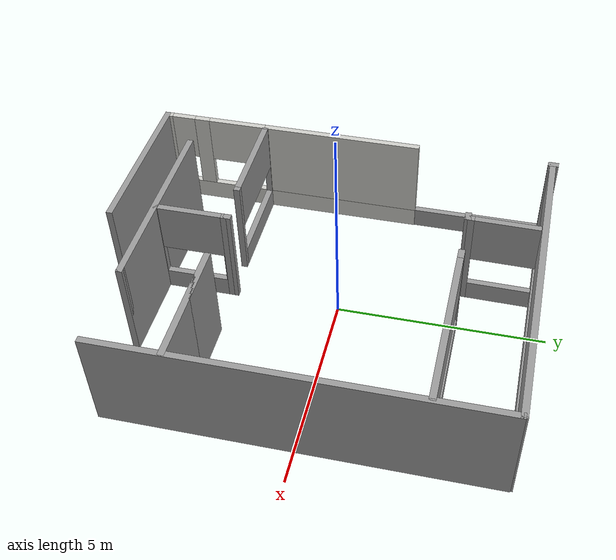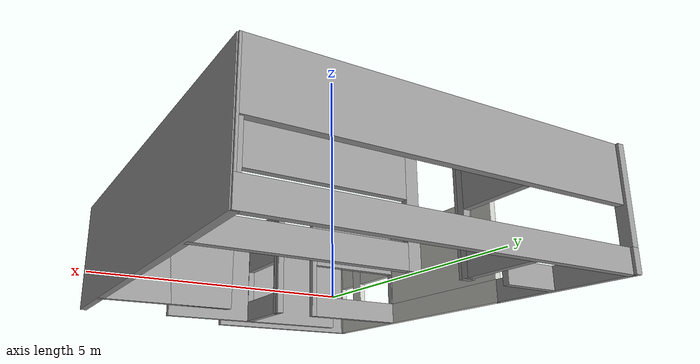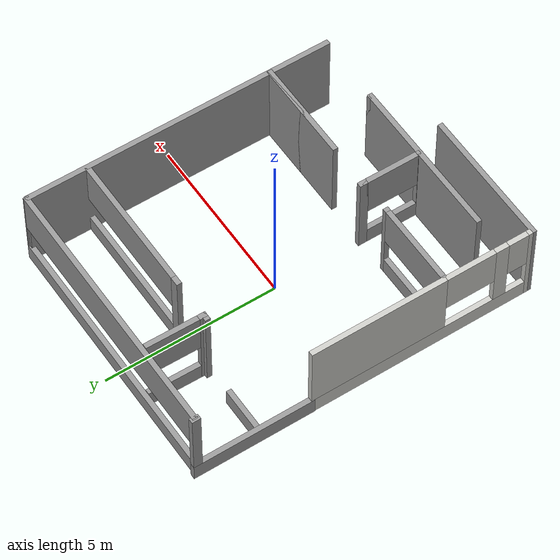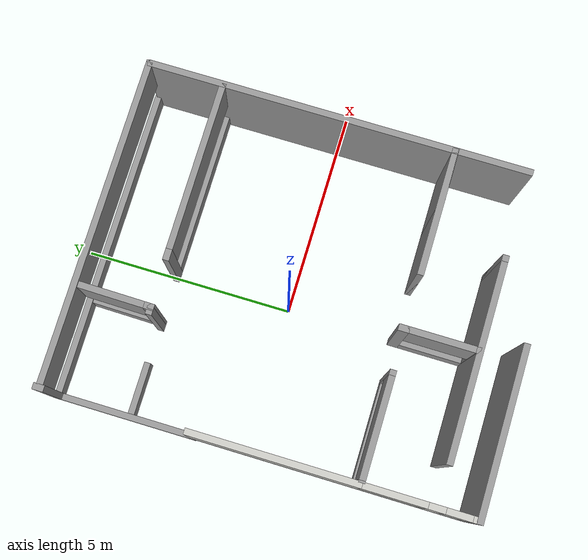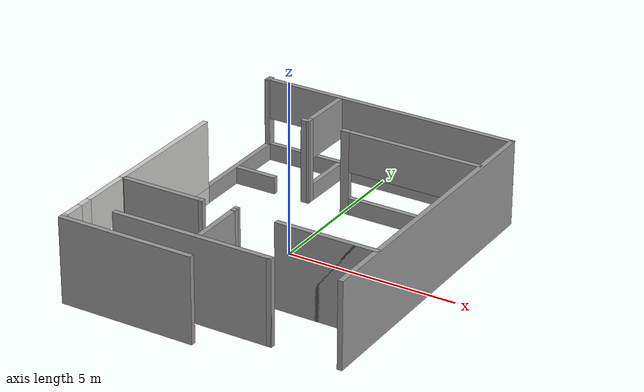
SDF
<?xml version='1.0'?>
<sdf version='1.6'>
  <model name='Office_room_without_door'>
    <pose frame=''>0.336715 -0.311362 0 0 -0 0</pose>
    <link name='Wall_1'>
      <collision name='Wall_1_Collision'>
        <geometry>
          <box>
            <size>4.75 0.15 2.5</size>
          </box>
        </geometry>
        <pose frame=''>0 0 1.25 0 -0 0</pose>
      </collision>
      <visual name='Wall_1_Visual'>
        <pose frame=''>0 0 1.25 0 -0 0</pose>
        <geometry>
          <box>
            <size>4.75 0.15 2.5</size>
          </box>
        </geometry>
        <material>
          <script>
            <uri>file://media/materials/scripts/gazebo.material</uri>
            <name>Gazebo/Grey</name>
          </script>
          <ambient>1 1 1 1</ambient>
        </material>
        <meta>
          <layer>0</layer>
        </meta>
      </visual>
      <pose frame=''>-0.516715 -3.99864 0 0 -0 0</pose>
    </link>
    <link name='Wall_14'>
      <collision name='Wall_14_Collision'>
        <geometry>
          <box>
            <size>3 0.15 2.5</size>
          </box>
        </geometry>
        <pose frame=''>0 0 1.25 0 -0 0</pose>
      </collision>
      <visual name='Wall_14_Visual'>
        <pose frame=''>0 0 1.25 0 -0 0</pose>
        <geometry>
          <box>
            <size>3 0.15 2.5</size>
          </box>
        </geometry>
        <material>
          <script>
            <uri>file://media/materials/scripts/gazebo.material</uri>
            <name>Gazebo/Grey</name>
          </script>
          <ambient>1 1 1 1</ambient>
        </material>
        <meta>
          <layer>0</layer>
        </meta>
      </visual>
      <pose frame=''>2.39026 -2.31103 0 0 -0 3.14159</pose>
    </link>
    <link name='Wall_15'>
      <collision name='Wall_15_Collision'>
        <geometry>
          <box>
            <size>3 0.15 2.5</size>
          </box>
        </geometry>
        <pose frame=''>0 0 1.25 0 -0 0</pose>
      </collision>
      <visual name='Wall_15_Visual'>
        <pose frame=''>0 0 1.25 0 -0 0</pose>
        <geometry>
          <box>
            <size>3 0.15 2.5</size>
          </box>
        </geometry>
        <material>
          <script>
            <uri>file://media/materials/scripts/gazebo.material</uri>
            <name>Gazebo/Grey</name>
          </script>
          <ambient>1 1 1 1</ambient>
        </material>
        <meta>
          <layer>0</layer>
        </meta>
      </visual>
      <pose frame=''>2.39026 -2.31103 0 0 -0 0</pose>
    </link>
    <link name='Wall_19'>
      <collision name='Wall_19_Collision'>
        <geometry>
          <box>
            <size>0.25 0.15 2.5</size>
          </box>
        </geometry>
        <pose frame=''>0 0 1.25 0 -0 0</pose>
      </collision>
      <visual name='Wall_19_Visual'>
        <pose frame=''>0 0 1.25 0 -0 0</pose>
        <geometry>
          <box>
            <size>0.25 0.15 2.5</size>
          </box>
        </geometry>
        <material>
          <script>
            <uri>file://media/materials/scripts/gazebo.material</uri>
            <name>Gazebo/Grey</name>
          </script>
          <ambient>1 1 1 1</ambient>
        </material>
        <meta>
          <layer>0</layer>
        </meta>
      </visual>
      <pose frame=''>-0.346715 -2.28864 0 0 -0 1.5708</pose>
    </link>
    <link name='Wall_2'>
      <collision name='Wall_2_Collision'>
        <geometry>
          <box>
            <size>0.15 0.15 2.5</size>
          </box>
        </geometry>
        <pose frame=''>0 0 1.25 0 -0 0</pose>
      </collision>
      <visual name='Wall_2_Visual'>
        <pose frame=''>0 0 1.25 0 -0 0</pose>
        <geometry>
          <box>
            <size>0.15 0.15 2.5</size>
          </box>
        </geometry>
        <material>
          <script>
            <uri>file://media/materials/scripts/gazebo.material</uri>
            <name>Gazebo/Grey</name>
          </script>
          <ambient>1 1 1 1</ambient>
        </material>
        <meta>
          <layer>0</layer>
        </meta>
      </visual>
      <pose frame=''>1.78329 -3.99864 0 0 -0 0</pose>
    </link>
    <link name='Wall_29'>
      <collision name='Wall_29_Collision'>
        <geometry>
          <box>
            <size>9 0.15 2.5</size>
          </box>
        </geometry>
        <pose frame=''>0 0 1.25 0 -0 0</pose>
      </collision>
      <visual name='Wall_29_Visual'>
        <pose frame=''>0 0 1.25 0 -0 0</pose>
        <geometry>
          <box>
            <size>9 0.15 2.5</size>
          </box>
        </geometry>
        <material>
          <script>
            <uri>file://media/materials/scripts/gazebo.material</uri>
            <name>Gazebo/Grey</name>
          </script>
          <ambient>1 1 1 1</ambient>
        </material>
        <meta>
          <layer>0</layer>
        </meta>
      </visual>
      <pose frame=''>3.83671 0.402172 0 0 0 -1.5708</pose>
    </link>
    <link name='Wall_31'>
      <collision name='Wall_31_Collision'>
        <geometry>
          <box>
            <size>0.25 0.15 2.5</size>
          </box>
        </geometry>
        <pose frame=''>0 0 1.25 0 -0 0</pose>
      </collision>
      <visual name='Wall_31_Visual'>
        <pose frame=''>0 0 1.25 0 -0 0</pose>
        <geometry>
          <box>
            <size>0.25 0.15 2.5</size>
          </box>
        </geometry>
        <material>
          <script>
            <uri>file://media/materials/scripts/gazebo.material</uri>
            <name>Gazebo/Grey</name>
          </script>
          <ambient>1 1 1 1</ambient>
        </material>
        <meta>
          <layer>0</layer>
        </meta>
      </visual>
      <pose frame=''>-1.53122 3.11017 0 0 -0 3.14159</pose>
    </link>
    <link name='Wall_35'>
      <pose frame=''>0.017406 4.87007 0 0 -0 0</pose>
      <visual name='Wall_35_Visual_0'>
        <pose frame=''>-3.85781 0 1.25 0 -0 0</pose>
        <geometry>
          <box>
            <size>0.034369 0.15 2.5</size>
          </box>
        </geometry>
        <material>
          <script>
            <uri>file://media/materials/scripts/gazebo.material</uri>
            <name>Gazebo/Grey</name>
          </script>
          <ambient>1 1 1 1</ambient>
        </material>
        <meta>
          <layer>0</layer>
        </meta>
      </visual>
      <collision name='Wall_35_Collision_0'>
        <geometry>
          <box>
            <size>0.034369 0.15 2.5</size>
          </box>
        </geometry>
        <pose frame=''>-3.85781 0 1.25 0 -0 0</pose>
      </collision>
      <visual name='Wall_35_Visual_1'>
        <pose frame=''>0.017185 0 0.25 0 -0 0</pose>
        <geometry>
          <box>
            <size>7.71563 0.15 0.5</size>
          </box>
        </geometry>
        <material>
          <script>
            <uri>file://media/materials/scripts/gazebo.material</uri>
            <name>Gazebo/Grey</name>
          </script>
          <ambient>1 1 1 1</ambient>
        </material>
        <meta>
          <layer>0</layer>
        </meta>
      </visual>
      <collision name='Wall_35_Collision_1'>
        <geometry>
          <box>
            <size>7.71563 0.15 0.5</size>
          </box>
        </geometry>
        <pose frame=''>0.017185 0 0.25 0 -0 0</pose>
      </collision>
      <visual name='Wall_35_Visual_2'>
        <pose frame=''>3.85399 0 1.5 0 -0 0</pose>
        <geometry>
          <box>
            <size>0.042012 0.15 2</size>
          </box>
        </geometry>
        <material>
          <script>
            <uri>file://media/materials/scripts/gazebo.material</uri>
            <name>Gazebo/Grey</name>
          </script>
          <ambient>1 1 1 1</ambient>
        </material>
        <meta>
          <layer>0</layer>
        </meta>
      </visual>
      <collision name='Wall_35_Collision_2'>
        <geometry>
          <box>
            <size>0.042012 0.15 2</size>
          </box>
        </geometry>
        <pose frame=''>3.85399 0 1.5 0 -0 0</pose>
      </collision>
      <visual name='Wall_35_Visual_3'>
        <pose frame=''>-0.003821 0 1.9 0 -0 0</pose>
        <geometry>
          <box>
            <size>7.67362 0.15 1.2</size>
          </box>
        </geometry>
        <material>
          <script>
            <uri>file://media/materials/scripts/gazebo.material</uri>
            <name>Gazebo/Grey</name>
          </script>
          <ambient>1 1 1 1</ambient>
        </material>
        <meta>
          <layer>0</layer>
        </meta>
      </visual>
      <collision name='Wall_35_Collision_3'>
        <geometry>
          <box>
            <size>7.67362 0.15 1.2</size>
          </box>
        </geometry>
        <pose frame=''>-0.003821 0 1.9 0 -0 0</pose>
      </collision>
    </link>
    <link name='Wall_37'>
      <pose frame=''>-3.83671 3.25636 0 0 -0 1.5708</pose>
      <visual name='Wall_37_Visual_0'>
        <pose frame=''>0 0 0.25 0 -0 0</pose>
        <geometry>
          <box>
            <size>3.5 0.15 0.5</size>
          </box>
        </geometry>
        <material>
          <script>
            <uri>file://media/materials/scripts/gazebo.material</uri>
            <name>Gazebo/Grey</name>
          </script>
          <ambient>1 1 1 1</ambient>
        </material>
        <meta>
          <layer>0</layer>
        </meta>
      </visual>
      <collision name='Wall_37_Collision_0'>
        <geometry>
          <box>
            <size>3.5 0.15 0.5</size>
          </box>
        </geometry>
        <pose frame=''>0 0 0.25 0 -0 0</pose>
      </collision>
      <visual name='Wall_37_Visual_1'>
        <pose frame=''>1.62366 0 1.5 0 -0 0</pose>
        <geometry>
          <box>
            <size>0.252674 0.15 2</size>
          </box>
        </geometry>
        <material>
          <script>
            <uri>file://media/materials/scripts/gazebo.material</uri>
            <name>Gazebo/Grey</name>
          </script>
          <ambient>1 1 1 1</ambient>
        </material>
        <meta>
          <layer>0</layer>
        </meta>
      </visual>
      <collision name='Wall_37_Collision_1'>
        <geometry>
          <box>
            <size>0.252674 0.15 2</size>
          </box>
        </geometry>
        <pose frame=''>1.62366 0 1.5 0 -0 0</pose>
      </collision>
    </link>
    <link name='Wall_40'>
      <pose frame=''>-3.13843 3.10362 0 0 -0 3.14159</pose>
      <visual name='Wall_40_Visual_0'>
        <pose frame=''>0 0 0.25 0 -0 0</pose>
        <geometry>
          <box>
            <size>1.25 0.15 0.5</size>
          </box>
        </geometry>
        <material>
          <script>
            <uri>file://media/materials/scripts/gazebo.material</uri>
            <name>Gazebo/Grey</name>
          </script>
          <ambient>1 1 1 1</ambient>
        </material>
        <meta>
          <layer>0</layer>
        </meta>
      </visual>
      <collision name='Wall_40_Collision_0'>
        <geometry>
          <box>
            <size>1.25 0.15 0.5</size>
          </box>
        </geometry>
        <pose frame=''>0 0 0.25 0 -0 0</pose>
      </collision>
    </link>
    <link name='Wall_42'>
      <pose frame=''>1.72225 3.1198 0 0 -0 0</pose>
      <visual name='Wall_42_Visual_0'>
        <pose frame=''>-1.99309 0 1.25 0 -0 0</pose>
        <geometry>
          <box>
            <size>0.26382 0.15 2.5</size>
          </box>
        </geometry>
        <material>
          <script>
            <uri>file://media/materials/scripts/gazebo.material</uri>
            <name>Gazebo/Grey</name>
          </script>
          <ambient>1 1 1 1</ambient>
        </material>
        <meta>
          <layer>0</layer>
        </meta>
      </visual>
      <collision name='Wall_42_Collision_0'>
        <geometry>
          <box>
            <size>0.26382 0.15 2.5</size>
          </box>
        </geometry>
        <pose frame=''>-1.99309 0 1.25 0 -0 0</pose>
      </collision>
      <visual name='Wall_42_Visual_1'>
        <pose frame=''>0.13191 0 0.25 0 -0 0</pose>
        <geometry>
          <box>
            <size>3.98618 0.15 0.5</size>
          </box>
        </geometry>
        <material>
          <script>
            <uri>file://media/materials/scripts/gazebo.material</uri>
            <name>Gazebo/Grey</name>
          </script>
          <ambient>1 1 1 1</ambient>
        </material>
        <meta>
          <layer>0</layer>
        </meta>
      </visual>
      <collision name='Wall_42_Collision_1'>
        <geometry>
          <box>
            <size>3.98618 0.15 0.5</size>
          </box>
        </geometry>
        <pose frame=''>0.13191 0 0.25 0 -0 0</pose>
      </collision>
      <visual name='Wall_42_Visual_2'>
        <pose frame=''>2.10351 0 1.5 0 -0 0</pose>
        <geometry>
          <box>
            <size>0.042976 0.15 2</size>
          </box>
        </geometry>
        <material>
          <script>
            <uri>file://media/materials/scripts/gazebo.material</uri>
            <name>Gazebo/Grey</name>
          </script>
          <ambient>1 1 1 1</ambient>
        </material>
        <meta>
          <layer>0</layer>
        </meta>
      </visual>
      <collision name='Wall_42_Collision_2'>
        <geometry>
          <box>
            <size>0.042976 0.15 2</size>
          </box>
        </geometry>
        <pose frame=''>2.10351 0 1.5 0 -0 0</pose>
      </collision>
      <visual name='Wall_42_Visual_3'>
        <pose frame=''>0.110422 0 1.9 0 -0 0</pose>
        <geometry>
          <box>
            <size>3.9432 0.15 1.2</size>
          </box>
        </geometry>
        <material>
          <script>
            <uri>file://media/materials/scripts/gazebo.material</uri>
            <name>Gazebo/Grey</name>
          </script>
          <ambient>1 1 1 1</ambient>
        </material>
        <meta>
          <layer>0</layer>
        </meta>
      </visual>
      <collision name='Wall_42_Collision_3'>
        <geometry>
          <box>
            <size>3.9432 0.15 1.2</size>
          </box>
        </geometry>
        <pose frame=''>0.110422 0 1.9 0 -0 0</pose>
      </collision>
    </link>
    <link name='Wall_44'>
      <pose frame=''>-2.52917 -2.3175 0 0 -0 3.14159</pose>
      <visual name='Wall_44_Visual_0'>
        <pose frame=''>-1.1869 0 1.25 0 -0 0</pose>
        <geometry>
          <box>
            <size>0.126206 0.15 2.5</size>
          </box>
        </geometry>
        <material>
          <script>
            <uri>file://media/materials/scripts/gazebo.material</uri>
            <name>Gazebo/Grey</name>
          </script>
          <ambient>1 1 1 1</ambient>
        </material>
        <meta>
          <layer>0</layer>
        </meta>
      </visual>
      <collision name='Wall_44_Collision_0'>
        <geometry>
          <box>
            <size>0.126206 0.15 2.5</size>
          </box>
        </geometry>
        <pose frame=''>-1.1869 0 1.25 0 -0 0</pose>
      </collision>
      <visual name='Wall_44_Visual_1'>
        <pose frame=''>0.063103 0 0.25 0 -0 0</pose>
        <geometry>
          <box>
            <size>2.37379 0.15 0.5</size>
          </box>
        </geometry>
        <material>
          <script>
            <uri>file://media/materials/scripts/gazebo.material</uri>
            <name>Gazebo/Grey</name>
          </script>
          <ambient>1 1 1 1</ambient>
        </material>
        <meta>
          <layer>0</layer>
        </meta>
      </visual>
      <collision name='Wall_44_Collision_1'>
        <geometry>
          <box>
            <size>2.37379 0.15 0.5</size>
          </box>
        </geometry>
        <pose frame=''>0.063103 0 0.25 0 -0 0</pose>
      </collision>
      <visual name='Wall_44_Visual_2'>
        <pose frame=''>1.22403 0 1.5 0 -0 0</pose>
        <geometry>
          <box>
            <size>0.05193 0.15 2</size>
          </box>
        </geometry>
        <material>
          <script>
            <uri>file://media/materials/scripts/gazebo.material</uri>
            <name>Gazebo/Grey</name>
          </script>
          <ambient>1 1 1 1</ambient>
        </material>
        <meta>
          <layer>0</layer>
        </meta>
      </visual>
      <collision name='Wall_44_Collision_2'>
        <geometry>
          <box>
            <size>0.05193 0.15 2</size>
          </box>
        </geometry>
        <pose frame=''>1.22403 0 1.5 0 -0 0</pose>
      </collision>
      <visual name='Wall_44_Visual_3'>
        <pose frame=''>0.037138 0 1.9 0 -0 0</pose>
        <geometry>
          <box>
            <size>2.32186 0.15 1.2</size>
          </box>
        </geometry>
        <material>
          <script>
            <uri>file://media/materials/scripts/gazebo.material</uri>
            <name>Gazebo/Grey</name>
          </script>
          <ambient>1 1 1 1</ambient>
        </material>
        <meta>
          <layer>0</layer>
        </meta>
      </visual>
      <collision name='Wall_44_Collision_3'>
        <geometry>
          <box>
            <size>2.32186 0.15 1.2</size>
          </box>
        </geometry>
        <pose frame=''>0.037138 0 1.9 0 -0 0</pose>
      </collision>
    </link>
    <link name='Wall_46'>
      <pose frame=''>-0.346715 -3.13864 0 0 0 -1.5708</pose>
      <visual name='Wall_46_Visual_0'>
        <pose frame=''>-0.806799 0 1.25 0 -0 0</pose>
        <geometry>
          <box>
            <size>0.136402 0.15 2.5</size>
          </box>
        </geometry>
        <material>
          <script>
            <uri>file://media/materials/scripts/gazebo.material</uri>
            <name>Gazebo/Grey</name>
          </script>
          <ambient>1 1 1 1</ambient>
        </material>
        <meta>
          <layer>0</layer>
        </meta>
      </visual>
      <collision name='Wall_46_Collision_0'>
        <geometry>
          <box>
            <size>0.136402 0.15 2.5</size>
          </box>
        </geometry>
        <pose frame=''>-0.806799 0 1.25 0 -0 0</pose>
      </collision>
      <visual name='Wall_46_Visual_1'>
        <pose frame=''>0.068201 0 0.25 0 -0 0</pose>
        <geometry>
          <box>
            <size>1.6136 0.15 0.5</size>
          </box>
        </geometry>
        <material>
          <script>
            <uri>file://media/materials/scripts/gazebo.material</uri>
            <name>Gazebo/Grey</name>
          </script>
          <ambient>1 1 1 1</ambient>
        </material>
        <meta>
          <layer>0</layer>
        </meta>
      </visual>
      <collision name='Wall_46_Collision_1'>
        <geometry>
          <box>
            <size>1.6136 0.15 0.5</size>
          </box>
        </geometry>
        <pose frame=''>0.068201 0 0.25 0 -0 0</pose>
      </collision>
      <visual name='Wall_46_Visual_2'>
        <pose frame=''>0.824679 0 1.5 0 -0 0</pose>
        <geometry>
          <box>
            <size>0.100642 0.15 2</size>
          </box>
        </geometry>
        <material>
          <script>
            <uri>file://media/materials/scripts/gazebo.material</uri>
            <name>Gazebo/Grey</name>
          </script>
          <ambient>1 1 1 1</ambient>
        </material>
        <meta>
          <layer>0</layer>
        </meta>
      </visual>
      <collision name='Wall_46_Collision_2'>
        <geometry>
          <box>
            <size>0.100642 0.15 2</size>
          </box>
        </geometry>
        <pose frame=''>0.824679 0 1.5 0 -0 0</pose>
      </collision>
      <visual name='Wall_46_Visual_3'>
        <pose frame=''>0.01788 0 1.9 0 -0 0</pose>
        <geometry>
          <box>
            <size>1.51296 0.15 1.2</size>
          </box>
        </geometry>
        <material>
          <script>
            <uri>file://media/materials/scripts/gazebo.material</uri>
            <name>Gazebo/Grey</name>
          </script>
          <ambient>1 1 1 1</ambient>
        </material>
        <meta>
          <layer>0</layer>
        </meta>
      </visual>
      <collision name='Wall_46_Collision_3'>
        <geometry>
          <box>
            <size>1.51296 0.15 1.2</size>
          </box>
        </geometry>
        <pose frame=''>0.01788 0 1.9 0 -0 0</pose>
      </collision>
    </link>
    <link name='Wall_48'>
      <pose frame=''>-1.47116 3.91017 0 0 -0 1.55823</pose>
      <visual name='Wall_48_Visual_0'>
        <pose frame=''>-0.758357 0 1.25 0 -0 0</pose>
        <geometry>
          <box>
            <size>0.233412 0.15 2.5</size>
          </box>
        </geometry>
        <material>
          <script>
            <uri>file://media/materials/scripts/gazebo.material</uri>
            <name>Gazebo/Grey</name>
          </script>
          <ambient>1 1 1 1</ambient>
        </material>
        <meta>
          <layer>0</layer>
        </meta>
      </visual>
      <collision name='Wall_48_Collision_0'>
        <geometry>
          <box>
            <size>0.233412 0.15 2.5</size>
          </box>
        </geometry>
        <pose frame=''>-0.758357 0 1.25 0 -0 0</pose>
      </collision>
      <visual name='Wall_48_Visual_1'>
        <pose frame=''>0.116706 0 0.25 0 -0 0</pose>
        <geometry>
          <box>
            <size>1.51671 0.15 0.5</size>
          </box>
        </geometry>
        <material>
          <script>
            <uri>file://media/materials/scripts/gazebo.material</uri>
            <name>Gazebo/Grey</name>
          </script>
          <ambient>1 1 1 1</ambient>
        </material>
        <meta>
          <layer>0</layer>
        </meta>
      </visual>
      <collision name='Wall_48_Collision_1'>
        <geometry>
          <box>
            <size>1.51671 0.15 0.5</size>
          </box>
        </geometry>
        <pose frame=''>0.116706 0 0.25 0 -0 0</pose>
      </collision>
      <visual name='Wall_48_Visual_2'>
        <pose frame=''>0.116706 0 1.9 0 -0 0</pose>
        <geometry>
          <box>
            <size>1.51671 0.15 1.2</size>
          </box>
        </geometry>
        <material>
          <script>
            <uri>file://media/materials/scripts/gazebo.material</uri>
            <name>Gazebo/Grey</name>
          </script>
          <ambient>1 1 1 1</ambient>
        </material>
        <meta>
          <layer>0</layer>
        </meta>
      </visual>
      <collision name='Wall_48_Collision_2'>
        <geometry>
          <box>
            <size>1.51671 0.15 1.2</size>
          </box>
        </geometry>
        <pose frame=''>0.116706 0 1.9 0 -0 0</pose>
      </collision>
    </link>
    <link name='Wall_7'>
      <collision name='Wall_7_Collision'>
        <geometry>
          <box>
            <size>4 0.15 2.5</size>
          </box>
        </geometry>
        <pose frame=''>0 0 1.25 0 -0 0</pose>
      </collision>
      <visual name='Wall_7_Visual'>
        <pose frame=''>0 0 1.25 0 -0 0</pose>
        <geometry>
          <box>
            <size>4 0.15 2.5</size>
          </box>
        </geometry>
        <material>
          <script>
            <uri>file://media/materials/scripts/gazebo.material</uri>
            <name>Gazebo/Grey</name>
          </script>
          <ambient>0 0 0 1</ambient>
        </material>
        <meta>
          <layer>0</layer>
        </meta>
      </visual>
      <pose frame=''>-1.89688 -4.93136 0 0 -0 0</pose>
    </link>
    <link name='Wall_9'>
      <pose frame=''>-3.82332 -1.64581 0 0 -0 1.5708</pose>
      <visual name='Wall_9_Visual_0'>
        <pose frame=''>-3.18923 0 1.25 0 -0 0</pose>
        <geometry>
          <box>
            <size>0.121542 0.15 2.5</size>
          </box>
        </geometry>
        <material>
          <script>
            <uri>file://media/materials/scripts/gazebo.material</uri>
            <name>Gazebo/CeilingTiled</name>
          </script>
          <ambient>1 1 1 1</ambient>
        </material>
        <meta>
          <layer>0</layer>
        </meta>
      </visual>
      <collision name='Wall_9_Collision_0'>
        <geometry>
          <box>
            <size>0.121542 0.15 2.5</size>
          </box>
        </geometry>
        <pose frame=''>-3.18923 0 1.25 0 -0 0</pose>
      </collision>
      <visual name='Wall_9_Visual_1'>
        <pose frame=''>0.060771 0 0.25 0 -0 0</pose>
        <geometry>
          <box>
            <size>6.37846 0.15 0.5</size>
          </box>
        </geometry>
        <material>
          <script>
            <uri>file://media/materials/scripts/gazebo.material</uri>
            <name>Gazebo/CeilingTiled</name>
          </script>
          <ambient>1 1 1 1</ambient>
        </material>
        <meta>
          <layer>0</layer>
        </meta>
      </visual>
      <collision name='Wall_9_Collision_1'>
        <geometry>
          <box>
            <size>6.37846 0.15 0.5</size>
          </box>
        </geometry>
        <pose frame=''>0.060771 0 0.25 0 -0 0</pose>
      </collision>
      <visual name='Wall_9_Visual_2'>
        <pose frame=''>-2.34543 0 1.5 0 -0 0</pose>
        <geometry>
          <box>
            <size>0.385418 0.15 2</size>
          </box>
        </geometry>
        <material>
          <script>
            <uri>file://media/materials/scripts/gazebo.material</uri>
            <name>Gazebo/CeilingTiled</name>
          </script>
          <ambient>1 1 1 1</ambient>
        </material>
        <meta>
          <layer>0</layer>
        </meta>
      </visual>
      <collision name='Wall_9_Collision_2'>
        <geometry>
          <box>
            <size>0.385418 0.15 2</size>
          </box>
        </geometry>
        <pose frame=''>-2.34543 0 1.5 0 -0 0</pose>
      </collision>
      <visual name='Wall_9_Visual_3'>
        <pose frame=''>1.27449 0 1.5 0 -0 0</pose>
        <geometry>
          <box>
            <size>3.95101 0.15 2</size>
          </box>
        </geometry>
        <material>
          <script>
            <uri>file://media/materials/scripts/gazebo.material</uri>
            <name>Gazebo/CeilingTiled</name>
          </script>
          <ambient>1 1 1 1</ambient>
        </material>
        <meta>
          <layer>0</layer>
        </meta>
      </visual>
      <collision name='Wall_9_Collision_3'>
        <geometry>
          <box>
            <size>3.95101 0.15 2</size>
          </box>
        </geometry>
        <pose frame=''>1.27449 0 1.5 0 -0 0</pose>
      </collision>
      <visual name='Wall_9_Visual_4'>
        <pose frame=''>-2.8333 0 1.9 0 -0 0</pose>
        <geometry>
          <box>
            <size>0.590321 0.15 1.2</size>
          </box>
        </geometry>
        <material>
          <script>
            <uri>file://media/materials/scripts/gazebo.material</uri>
            <name>Gazebo/CeilingTiled</name>
          </script>
          <ambient>1 1 1 1</ambient>
        </material>
        <meta>
          <layer>0</layer>
        </meta>
      </visual>
      <collision name='Wall_9_Collision_4'>
        <geometry>
          <box>
            <size>0.590321 0.15 1.2</size>
          </box>
        </geometry>
        <pose frame=''>-2.8333 0 1.9 0 -0 0</pose>
      </collision>
      <visual name='Wall_9_Visual_5'>
        <pose frame=''>-1.42687 0 1.9 0 -0 0</pose>
        <geometry>
          <box>
            <size>1.45171 0.15 1.2</size>
          </box>
        </geometry>
        <material>
          <script>
            <uri>file://media/materials/scripts/gazebo.material</uri>
            <name>Gazebo/CeilingTiled</name>
          </script>
          <ambient>1 1 1 1</ambient>
        </material>
        <meta>
          <layer>0</layer>
        </meta>
      </visual>
      <collision name='Wall_9_Collision_5'>
        <geometry>
          <box>
            <size>1.45171 0.15 1.2</size>
          </box>
        </geometry>
        <pose frame=''>-1.42687 0 1.9 0 -0 0</pose>
      </collision>
    </link>
    <static>1</static>
  </model>
</sdf>
